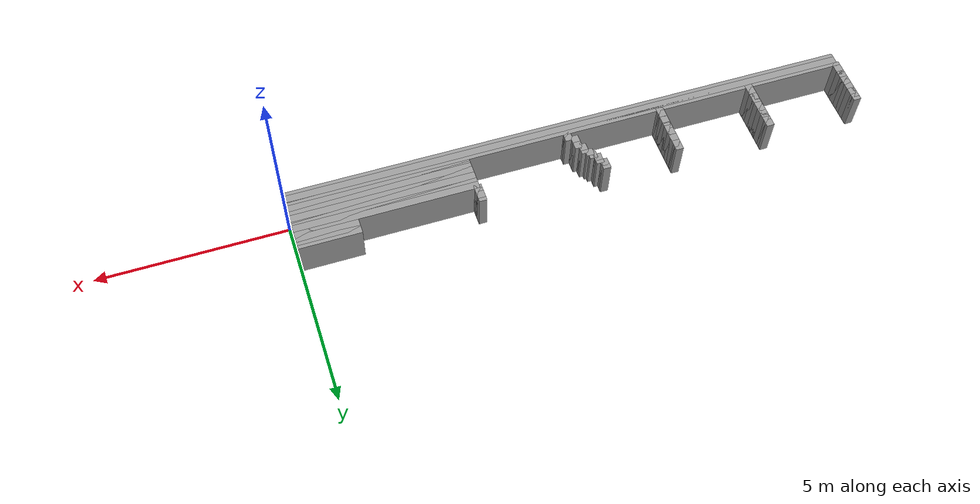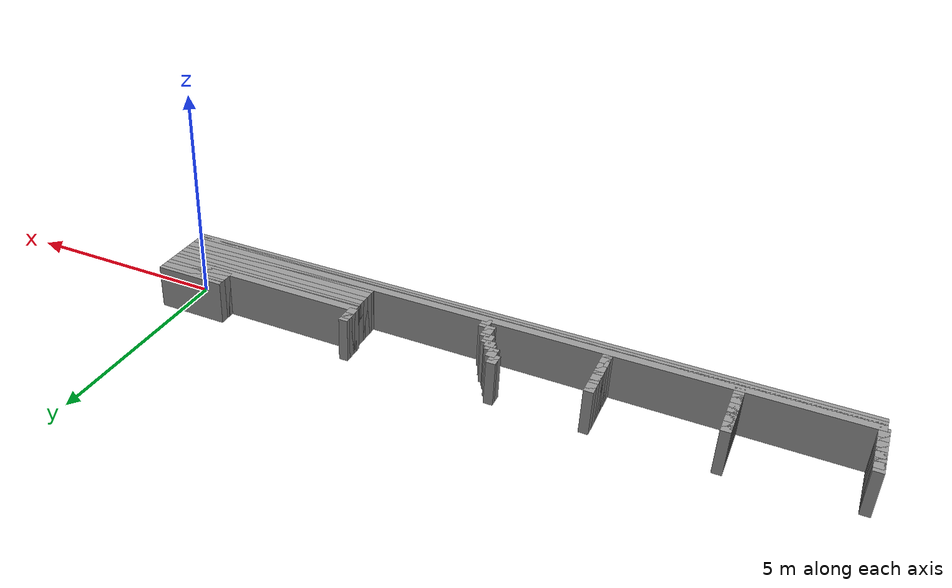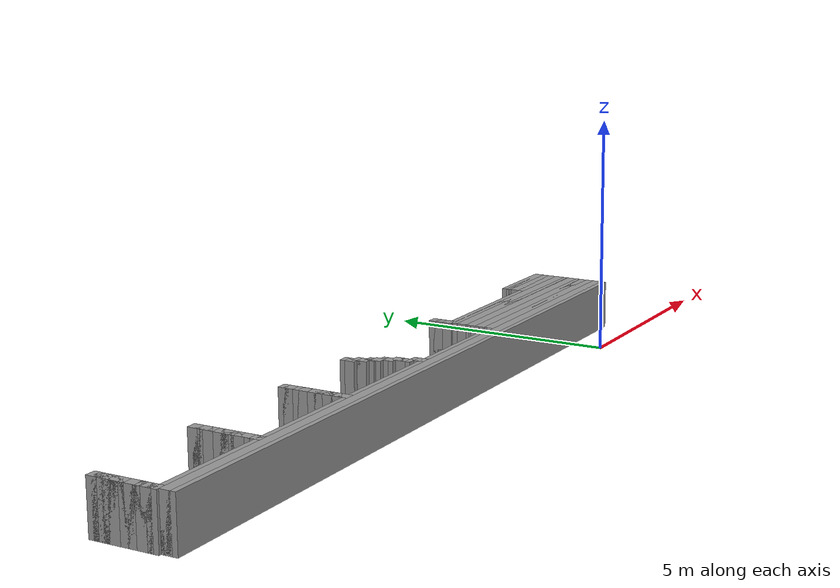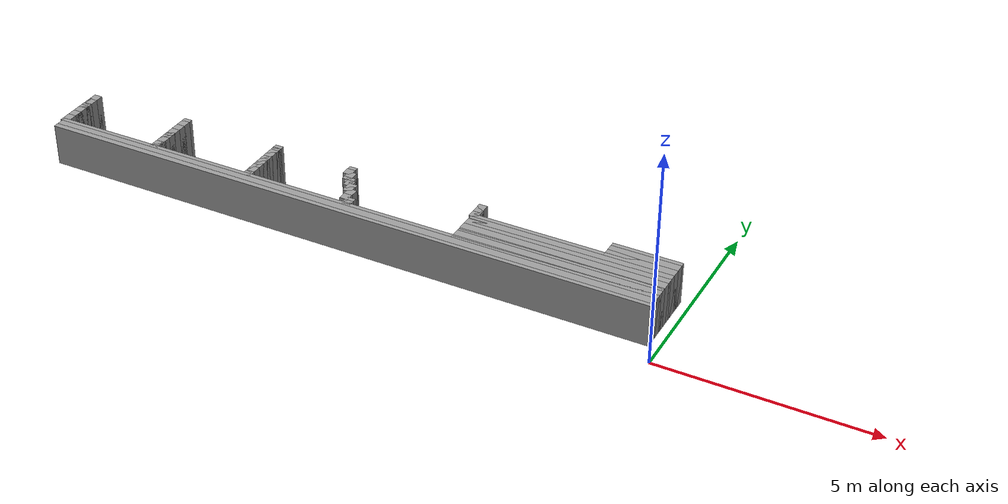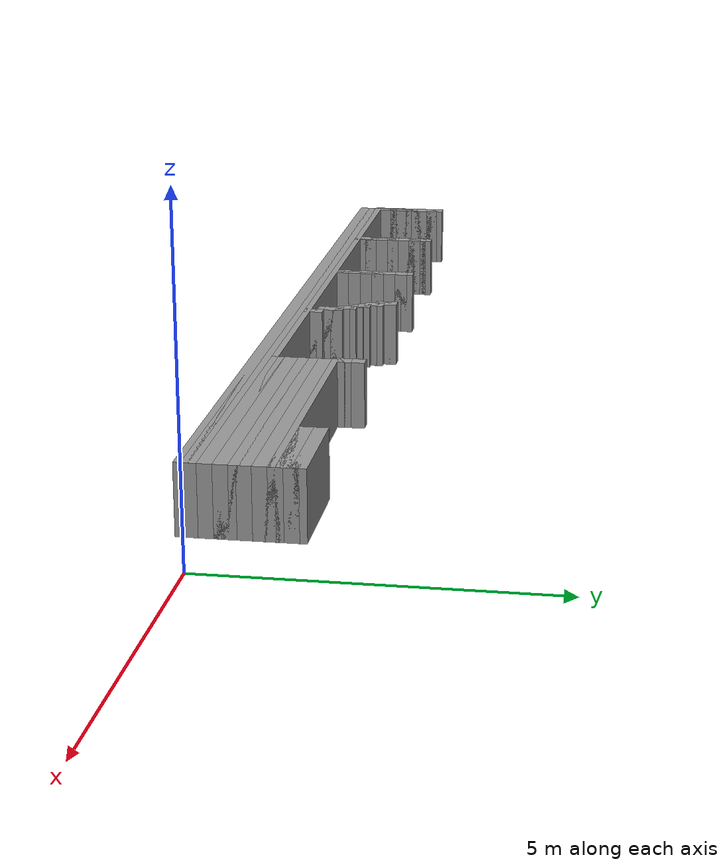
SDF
<sdf version="1.6">
 <world name="GridMap">
  <model name="GridMap">
   <link name="Wall_(74.5,0.0)">
    <collision name="Wall_(74.5,0.0)_Collision">
     <geometry><box><size>14.9 0.2 1.0</size></box></geometry>
     <pose>-7.45 0.0 0.5 0 -0 0</pose>
    </collision>
    <visual name="Wall_(74.5,0.0)_Visual">
     <geometry><box><size>14.9 0.2 1.0</size></box></geometry>
     <pose>-7.45 0.0 0.5 0 -0 0</pose>
     <material>
      <script><uri>file://media/materials/scripts/gazebo.material</uri><name>Gazebo/Grey</name></script>
      <ambient>1 1 1 1</ambient>
     </material>
     <meta><layer>0</layer></meta>
    </visual>
    <pose>0 0 0.5 0 -0 0</pose>
   </link>
   <link name="Wall_(74.5,1.0)">
    <collision name="Wall_(74.5,1.0)_Collision">
     <geometry><box><size>14.9 0.2 1.0</size></box></geometry>
     <pose>-7.45 0.1 0.5 0 -0 0</pose>
    </collision>
    <visual name="Wall_(74.5,1.0)_Visual">
     <geometry><box><size>14.9 0.2 1.0</size></box></geometry>
     <pose>-7.45 0.1 0.5 0 -0 0</pose>
     <material>
      <script><uri>file://media/materials/scripts/gazebo.material</uri><name>Gazebo/Grey</name></script>
      <ambient>1 1 1 1</ambient>
     </material>
     <meta><layer>0</layer></meta>
    </visual>
    <pose>0 0 0.5 0 -0 0</pose>
   </link>
   <link name="Wall_(74.5,2.0)">
    <collision name="Wall_(74.5,2.0)_Collision">
     <geometry><box><size>14.9 0.2 1.0</size></box></geometry>
     <pose>-7.45 0.2 0.5 0 -0 0</pose>
    </collision>
    <visual name="Wall_(74.5,2.0)_Visual">
     <geometry><box><size>14.9 0.2 1.0</size></box></geometry>
     <pose>-7.45 0.2 0.5 0 -0 0</pose>
     <material>
      <script><uri>file://media/materials/scripts/gazebo.material</uri><name>Gazebo/Grey</name></script>
      <ambient>1 1 1 1</ambient>
     </material>
     <meta><layer>0</layer></meta>
    </visual>
    <pose>0 0 0.5 0 -0 0</pose>
   </link>
   <link name="Wall_(23.5,3.0)">
    <collision name="Wall_(23.5,3.0)_Collision">
     <geometry><box><size>4.7 0.2 1.0</size></box></geometry>
     <pose>-2.35 0.30000000000000004 0.5 0 -0 0</pose>
    </collision>
    <visual name="Wall_(23.5,3.0)_Visual">
     <geometry><box><size>4.7 0.2 1.0</size></box></geometry>
     <pose>-2.35 0.30000000000000004 0.5 0 -0 0</pose>
     <material>
      <script><uri>file://media/materials/scripts/gazebo.material</uri><name>Gazebo/Grey</name></script>
      <ambient>1 1 1 1</ambient>
     </material>
     <meta><layer>0</layer></meta>
    </visual>
    <pose>0 0 0.5 0 -0 0</pose>
   </link>
   <link name="Wall_(73.0,3.0)">
    <collision name="Wall_(73.0,3.0)_Collision">
     <geometry><box><size>0.2 0.2 1.0</size></box></geometry>
     <pose>-7.300000000000001 0.30000000000000004 0.5 0 -0 0</pose>
    </collision>
    <visual name="Wall_(73.0,3.0)_Visual">
     <geometry><box><size>0.2 0.2 1.0</size></box></geometry>
     <pose>-7.300000000000001 0.30000000000000004 0.5 0 -0 0</pose>
     <material>
      <script><uri>file://media/materials/scripts/gazebo.material</uri><name>Gazebo/Grey</name></script>
      <ambient>1 1 1 1</ambient>
     </material>
     <meta><layer>0</layer></meta>
    </visual>
    <pose>0 0 0.5 0 -0 0</pose>
   </link>
   <link name="Wall_(98.5,3.0)">
    <collision name="Wall_(98.5,3.0)_Collision">
     <geometry><box><size>0.2 0.2 1.0</size></box></geometry>
     <pose>-9.850000000000001 0.30000000000000004 0.5 0 -0 0</pose>
    </collision>
    <visual name="Wall_(98.5,3.0)_Visual">
     <geometry><box><size>0.2 0.2 1.0</size></box></geometry>
     <pose>-9.850000000000001 0.30000000000000004 0.5 0 -0 0</pose>
     <material>
      <script><uri>file://media/materials/scripts/gazebo.material</uri><name>Gazebo/Grey</name></script>
      <ambient>1 1 1 1</ambient>
     </material>
     <meta><layer>0</layer></meta>
    </visual>
    <pose>0 0 0.5 0 -0 0</pose>
   </link>
   <link name="Wall_(123.5,3.0)">
    <collision name="Wall_(123.5,3.0)_Collision">
     <geometry><box><size>0.2 0.2 1.0</size></box></geometry>
     <pose>-12.350000000000001 0.30000000000000004 0.5 0 -0 0</pose>
    </collision>
    <visual name="Wall_(123.5,3.0)_Visual">
     <geometry><box><size>0.2 0.2 1.0</size></box></geometry>
     <pose>-12.350000000000001 0.30000000000000004 0.5 0 -0 0</pose>
     <material>
      <script><uri>file://media/materials/scripts/gazebo.material</uri><name>Gazebo/Grey</name></script>
      <ambient>1 1 1 1</ambient>
     </material>
     <meta><layer>0</layer></meta>
    </visual>
    <pose>0 0 0.5 0 -0 0</pose>
   </link>
   <link name="Wall_(148.5,3.0)">
    <collision name="Wall_(148.5,3.0)_Collision">
     <geometry><box><size>0.2 0.2 1.0</size></box></geometry>
     <pose>-14.850000000000001 0.30000000000000004 0.5 0 -0 0</pose>
    </collision>
    <visual name="Wall_(148.5,3.0)_Visual">
     <geometry><box><size>0.2 0.2 1.0</size></box></geometry>
     <pose>-14.850000000000001 0.30000000000000004 0.5 0 -0 0</pose>
     <material>
      <script><uri>file://media/materials/scripts/gazebo.material</uri><name>Gazebo/Grey</name></script>
      <ambient>1 1 1 1</ambient>
     </material>
     <meta><layer>0</layer></meta>
    </visual>
    <pose>0 0 0.5 0 -0 0</pose>
   </link>
   <link name="Wall_(23.5,4.0)">
    <collision name="Wall_(23.5,4.0)_Collision">
     <geometry><box><size>4.7 0.2 1.0</size></box></geometry>
     <pose>-2.35 0.4 0.5 0 -0 0</pose>
    </collision>
    <visual name="Wall_(23.5,4.0)_Visual">
     <geometry><box><size>4.7 0.2 1.0</size></box></geometry>
     <pose>-2.35 0.4 0.5 0 -0 0</pose>
     <material>
      <script><uri>file://media/materials/scripts/gazebo.material</uri><name>Gazebo/Grey</name></script>
      <ambient>1 1 1 1</ambient>
     </material>
     <meta><layer>0</layer></meta>
    </visual>
    <pose>0 0 0.5 0 -0 0</pose>
   </link>
   <link name="Wall_(73.0,4.0)">
    <collision name="Wall_(73.0,4.0)_Collision">
     <geometry><box><size>0.2 0.2 1.0</size></box></geometry>
     <pose>-7.300000000000001 0.4 0.5 0 -0 0</pose>
    </collision>
    <visual name="Wall_(73.0,4.0)_Visual">
     <geometry><box><size>0.2 0.2 1.0</size></box></geometry>
     <pose>-7.300000000000001 0.4 0.5 0 -0 0</pose>
     <material>
      <script><uri>file://media/materials/scripts/gazebo.material</uri><name>Gazebo/Grey</name></script>
      <ambient>1 1 1 1</ambient>
     </material>
     <meta><layer>0</layer></meta>
    </visual>
    <pose>0 0 0.5 0 -0 0</pose>
   </link>
   <link name="Wall_(98.5,4.0)">
    <collision name="Wall_(98.5,4.0)_Collision">
     <geometry><box><size>0.2 0.2 1.0</size></box></geometry>
     <pose>-9.850000000000001 0.4 0.5 0 -0 0</pose>
    </collision>
    <visual name="Wall_(98.5,4.0)_Visual">
     <geometry><box><size>0.2 0.2 1.0</size></box></geometry>
     <pose>-9.850000000000001 0.4 0.5 0 -0 0</pose>
     <material>
      <script><uri>file://media/materials/scripts/gazebo.material</uri><name>Gazebo/Grey</name></script>
      <ambient>1 1 1 1</ambient>
     </material>
     <meta><layer>0</layer></meta>
    </visual>
    <pose>0 0 0.5 0 -0 0</pose>
   </link>
   <link name="Wall_(123.5,4.0)">
    <collision name="Wall_(123.5,4.0)_Collision">
     <geometry><box><size>0.2 0.2 1.0</size></box></geometry>
     <pose>-12.350000000000001 0.4 0.5 0 -0 0</pose>
    </collision>
    <visual name="Wall_(123.5,4.0)_Visual">
     <geometry><box><size>0.2 0.2 1.0</size></box></geometry>
     <pose>-12.350000000000001 0.4 0.5 0 -0 0</pose>
     <material>
      <script><uri>file://media/materials/scripts/gazebo.material</uri><name>Gazebo/Grey</name></script>
      <ambient>1 1 1 1</ambient>
     </material>
     <meta><layer>0</layer></meta>
    </visual>
    <pose>0 0 0.5 0 -0 0</pose>
   </link>
   <link name="Wall_(148.5,4.0)">
    <collision name="Wall_(148.5,4.0)_Collision">
     <geometry><box><size>0.2 0.2 1.0</size></box></geometry>
     <pose>-14.850000000000001 0.4 0.5 0 -0 0</pose>
    </collision>
    <visual name="Wall_(148.5,4.0)_Visual">
     <geometry><box><size>0.2 0.2 1.0</size></box></geometry>
     <pose>-14.850000000000001 0.4 0.5 0 -0 0</pose>
     <material>
      <script><uri>file://media/materials/scripts/gazebo.material</uri><name>Gazebo/Grey</name></script>
      <ambient>1 1 1 1</ambient>
     </material>
     <meta><layer>0</layer></meta>
    </visual>
    <pose>0 0 0.5 0 -0 0</pose>
   </link>
   <link name="Wall_(23.5,5.0)">
    <collision name="Wall_(23.5,5.0)_Collision">
     <geometry><box><size>4.7 0.2 1.0</size></box></geometry>
     <pose>-2.35 0.5 0.5 0 -0 0</pose>
    </collision>
    <visual name="Wall_(23.5,5.0)_Visual">
     <geometry><box><size>4.7 0.2 1.0</size></box></geometry>
     <pose>-2.35 0.5 0.5 0 -0 0</pose>
     <material>
      <script><uri>file://media/materials/scripts/gazebo.material</uri><name>Gazebo/Grey</name></script>
      <ambient>1 1 1 1</ambient>
     </material>
     <meta><layer>0</layer></meta>
    </visual>
    <pose>0 0 0.5 0 -0 0</pose>
   </link>
   <link name="Wall_(74.5,5.0)">
    <collision name="Wall_(74.5,5.0)_Collision">
     <geometry><box><size>0.2 0.2 1.0</size></box></geometry>
     <pose>-7.45 0.5 0.5 0 -0 0</pose>
    </collision>
    <visual name="Wall_(74.5,5.0)_Visual">
     <geometry><box><size>0.2 0.2 1.0</size></box></geometry>
     <pose>-7.45 0.5 0.5 0 -0 0</pose>
     <material>
      <script><uri>file://media/materials/scripts/gazebo.material</uri><name>Gazebo/Grey</name></script>
      <ambient>1 1 1 1</ambient>
     </material>
     <meta><layer>0</layer></meta>
    </visual>
    <pose>0 0 0.5 0 -0 0</pose>
   </link>
   <link name="Wall_(98.5,5.0)">
    <collision name="Wall_(98.5,5.0)_Collision">
     <geometry><box><size>0.2 0.2 1.0</size></box></geometry>
     <pose>-9.850000000000001 0.5 0.5 0 -0 0</pose>
    </collision>
    <visual name="Wall_(98.5,5.0)_Visual">
     <geometry><box><size>0.2 0.2 1.0</size></box></geometry>
     <pose>-9.850000000000001 0.5 0.5 0 -0 0</pose>
     <material>
      <script><uri>file://media/materials/scripts/gazebo.material</uri><name>Gazebo/Grey</name></script>
      <ambient>1 1 1 1</ambient>
     </material>
     <meta><layer>0</layer></meta>
    </visual>
    <pose>0 0 0.5 0 -0 0</pose>
   </link>
   <link name="Wall_(123.5,5.0)">
    <collision name="Wall_(123.5,5.0)_Collision">
     <geometry><box><size>0.2 0.2 1.0</size></box></geometry>
     <pose>-12.350000000000001 0.5 0.5 0 -0 0</pose>
    </collision>
    <visual name="Wall_(123.5,5.0)_Visual">
     <geometry><box><size>0.2 0.2 1.0</size></box></geometry>
     <pose>-12.350000000000001 0.5 0.5 0 -0 0</pose>
     <material>
      <script><uri>file://media/materials/scripts/gazebo.material</uri><name>Gazebo/Grey</name></script>
      <ambient>1 1 1 1</ambient>
     </material>
     <meta><layer>0</layer></meta>
    </visual>
    <pose>0 0 0.5 0 -0 0</pose>
   </link>
   <link name="Wall_(148.5,5.0)">
    <collision name="Wall_(148.5,5.0)_Collision">
     <geometry><box><size>0.2 0.2 1.0</size></box></geometry>
     <pose>-14.850000000000001 0.5 0.5 0 -0 0</pose>
    </collision>
    <visual name="Wall_(148.5,5.0)_Visual">
     <geometry><box><size>0.2 0.2 1.0</size></box></geometry>
     <pose>-14.850000000000001 0.5 0.5 0 -0 0</pose>
     <material>
      <script><uri>file://media/materials/scripts/gazebo.material</uri><name>Gazebo/Grey</name></script>
      <ambient>1 1 1 1</ambient>
     </material>
     <meta><layer>0</layer></meta>
    </visual>
    <pose>0 0 0.5 0 -0 0</pose>
   </link>
   <link name="Wall_(23.5,6.0)">
    <collision name="Wall_(23.5,6.0)_Collision">
     <geometry><box><size>4.7 0.2 1.0</size></box></geometry>
     <pose>-2.35 0.6000000000000001 0.5 0 -0 0</pose>
    </collision>
    <visual name="Wall_(23.5,6.0)_Visual">
     <geometry><box><size>4.7 0.2 1.0</size></box></geometry>
     <pose>-2.35 0.6000000000000001 0.5 0 -0 0</pose>
     <material>
      <script><uri>file://media/materials/scripts/gazebo.material</uri><name>Gazebo/Grey</name></script>
      <ambient>1 1 1 1</ambient>
     </material>
     <meta><layer>0</layer></meta>
    </visual>
    <pose>0 0 0.5 0 -0 0</pose>
   </link>
   <link name="Wall_(74.5,6.0)">
    <collision name="Wall_(74.5,6.0)_Collision">
     <geometry><box><size>0.2 0.2 1.0</size></box></geometry>
     <pose>-7.45 0.6000000000000001 0.5 0 -0 0</pose>
    </collision>
    <visual name="Wall_(74.5,6.0)_Visual">
     <geometry><box><size>0.2 0.2 1.0</size></box></geometry>
     <pose>-7.45 0.6000000000000001 0.5 0 -0 0</pose>
     <material>
      <script><uri>file://media/materials/scripts/gazebo.material</uri><name>Gazebo/Grey</name></script>
      <ambient>1 1 1 1</ambient>
     </material>
     <meta><layer>0</layer></meta>
    </visual>
    <pose>0 0 0.5 0 -0 0</pose>
   </link>
   <link name="Wall_(98.5,6.0)">
    <collision name="Wall_(98.5,6.0)_Collision">
     <geometry><box><size>0.2 0.2 1.0</size></box></geometry>
     <pose>-9.850000000000001 0.6000000000000001 0.5 0 -0 0</pose>
    </collision>
    <visual name="Wall_(98.5,6.0)_Visual">
     <geometry><box><size>0.2 0.2 1.0</size></box></geometry>
     <pose>-9.850000000000001 0.6000000000000001 0.5 0 -0 0</pose>
     <material>
      <script><uri>file://media/materials/scripts/gazebo.material</uri><name>Gazebo/Grey</name></script>
      <ambient>1 1 1 1</ambient>
     </material>
     <meta><layer>0</layer></meta>
    </visual>
    <pose>0 0 0.5 0 -0 0</pose>
   </link>
   <link name="Wall_(123.5,6.0)">
    <collision name="Wall_(123.5,6.0)_Collision">
     <geometry><box><size>0.2 0.2 1.0</size></box></geometry>
     <pose>-12.350000000000001 0.6000000000000001 0.5 0 -0 0</pose>
    </collision>
    <visual name="Wall_(123.5,6.0)_Visual">
     <geometry><box><size>0.2 0.2 1.0</size></box></geometry>
     <pose>-12.350000000000001 0.6000000000000001 0.5 0 -0 0</pose>
     <material>
      <script><uri>file://media/materials/scripts/gazebo.material</uri><name>Gazebo/Grey</name></script>
      <ambient>1 1 1 1</ambient>
     </material>
     <meta><layer>0</layer></meta>
    </visual>
    <pose>0 0 0.5 0 -0 0</pose>
   </link>
   <link name="Wall_(148.5,6.0)">
    <collision name="Wall_(148.5,6.0)_Collision">
     <geometry><box><size>0.2 0.2 1.0</size></box></geometry>
     <pose>-14.850000000000001 0.6000000000000001 0.5 0 -0 0</pose>
    </collision>
    <visual name="Wall_(148.5,6.0)_Visual">
     <geometry><box><size>0.2 0.2 1.0</size></box></geometry>
     <pose>-14.850000000000001 0.6000000000000001 0.5 0 -0 0</pose>
     <material>
      <script><uri>file://media/materials/scripts/gazebo.material</uri><name>Gazebo/Grey</name></script>
      <ambient>1 1 1 1</ambient>
     </material>
     <meta><layer>0</layer></meta>
    </visual>
    <pose>0 0 0.5 0 -0 0</pose>
   </link>
   <link name="Wall_(23.5,7.0)">
    <collision name="Wall_(23.5,7.0)_Collision">
     <geometry><box><size>4.7 0.2 1.0</size></box></geometry>
     <pose>-2.35 0.7000000000000001 0.5 0 -0 0</pose>
    </collision>
    <visual name="Wall_(23.5,7.0)_Visual">
     <geometry><box><size>4.7 0.2 1.0</size></box></geometry>
     <pose>-2.35 0.7000000000000001 0.5 0 -0 0</pose>
     <material>
      <script><uri>file://media/materials/scripts/gazebo.material</uri><name>Gazebo/Grey</name></script>
      <ambient>1 1 1 1</ambient>
     </material>
     <meta><layer>0</layer></meta>
    </visual>
    <pose>0 0 0.5 0 -0 0</pose>
   </link>
   <link name="Wall_(74.5,7.0)">
    <collision name="Wall_(74.5,7.0)_Collision">
     <geometry><box><size>0.2 0.2 1.0</size></box></geometry>
     <pose>-7.45 0.7000000000000001 0.5 0 -0 0</pose>
    </collision>
    <visual name="Wall_(74.5,7.0)_Visual">
     <geometry><box><size>0.2 0.2 1.0</size></box></geometry>
     <pose>-7.45 0.7000000000000001 0.5 0 -0 0</pose>
     <material>
      <script><uri>file://media/materials/scripts/gazebo.material</uri><name>Gazebo/Grey</name></script>
      <ambient>1 1 1 1</ambient>
     </material>
     <meta><layer>0</layer></meta>
    </visual>
    <pose>0 0 0.5 0 -0 0</pose>
   </link>
   <link name="Wall_(98.5,7.0)">
    <collision name="Wall_(98.5,7.0)_Collision">
     <geometry><box><size>0.2 0.2 1.0</size></box></geometry>
     <pose>-9.850000000000001 0.7000000000000001 0.5 0 -0 0</pose>
    </collision>
    <visual name="Wall_(98.5,7.0)_Visual">
     <geometry><box><size>0.2 0.2 1.0</size></box></geometry>
     <pose>-9.850000000000001 0.7000000000000001 0.5 0 -0 0</pose>
     <material>
      <script><uri>file://media/materials/scripts/gazebo.material</uri><name>Gazebo/Grey</name></script>
      <ambient>1 1 1 1</ambient>
     </material>
     <meta><layer>0</layer></meta>
    </visual>
    <pose>0 0 0.5 0 -0 0</pose>
   </link>
   <link name="Wall_(123.5,7.0)">
    <collision name="Wall_(123.5,7.0)_Collision">
     <geometry><box><size>0.2 0.2 1.0</size></box></geometry>
     <pose>-12.350000000000001 0.7000000000000001 0.5 0 -0 0</pose>
    </collision>
    <visual name="Wall_(123.5,7.0)_Visual">
     <geometry><box><size>0.2 0.2 1.0</size></box></geometry>
     <pose>-12.350000000000001 0.7000000000000001 0.5 0 -0 0</pose>
     <material>
      <script><uri>file://media/materials/scripts/gazebo.material</uri><name>Gazebo/Grey</name></script>
      <ambient>1 1 1 1</ambient>
     </material>
     <meta><layer>0</layer></meta>
    </visual>
    <pose>0 0 0.5 0 -0 0</pose>
   </link>
   <link name="Wall_(148.5,7.0)">
    <collision name="Wall_(148.5,7.0)_Collision">
     <geometry><box><size>0.2 0.2 1.0</size></box></geometry>
     <pose>-14.850000000000001 0.7000000000000001 0.5 0 -0 0</pose>
    </collision>
    <visual name="Wall_(148.5,7.0)_Visual">
     <geometry><box><size>0.2 0.2 1.0</size></box></geometry>
     <pose>-14.850000000000001 0.7000000000000001 0.5 0 -0 0</pose>
     <material>
      <script><uri>file://media/materials/scripts/gazebo.material</uri><name>Gazebo/Grey</name></script>
      <ambient>1 1 1 1</ambient>
     </material>
     <meta><layer>0</layer></meta>
    </visual>
    <pose>0 0 0.5 0 -0 0</pose>
   </link>
   <link name="Wall_(23.5,8.0)">
    <collision name="Wall_(23.5,8.0)_Collision">
     <geometry><box><size>4.7 0.2 1.0</size></box></geometry>
     <pose>-2.35 0.8 0.5 0 -0 0</pose>
    </collision>
    <visual name="Wall_(23.5,8.0)_Visual">
     <geometry><box><size>4.7 0.2 1.0</size></box></geometry>
     <pose>-2.35 0.8 0.5 0 -0 0</pose>
     <material>
      <script><uri>file://media/materials/scripts/gazebo.material</uri><name>Gazebo/Grey</name></script>
      <ambient>1 1 1 1</ambient>
     </material>
     <meta><layer>0</layer></meta>
    </visual>
    <pose>0 0 0.5 0 -0 0</pose>
   </link>
   <link name="Wall_(75.5,8.0)">
    <collision name="Wall_(75.5,8.0)_Collision">
     <geometry><box><size>0.2 0.2 1.0</size></box></geometry>
     <pose>-7.550000000000001 0.8 0.5 0 -0 0</pose>
    </collision>
    <visual name="Wall_(75.5,8.0)_Visual">
     <geometry><box><size>0.2 0.2 1.0</size></box></geometry>
     <pose>-7.550000000000001 0.8 0.5 0 -0 0</pose>
     <material>
      <script><uri>file://media/materials/scripts/gazebo.material</uri><name>Gazebo/Grey</name></script>
      <ambient>1 1 1 1</ambient>
     </material>
     <meta><layer>0</layer></meta>
    </visual>
    <pose>0 0 0.5 0 -0 0</pose>
   </link>
   <link name="Wall_(98.5,8.0)">
    <collision name="Wall_(98.5,8.0)_Collision">
     <geometry><box><size>0.2 0.2 1.0</size></box></geometry>
     <pose>-9.850000000000001 0.8 0.5 0 -0 0</pose>
    </collision>
    <visual name="Wall_(98.5,8.0)_Visual">
     <geometry><box><size>0.2 0.2 1.0</size></box></geometry>
     <pose>-9.850000000000001 0.8 0.5 0 -0 0</pose>
     <material>
      <script><uri>file://media/materials/scripts/gazebo.material</uri><name>Gazebo/Grey</name></script>
      <ambient>1 1 1 1</ambient>
     </material>
     <meta><layer>0</layer></meta>
    </visual>
    <pose>0 0 0.5 0 -0 0</pose>
   </link>
   <link name="Wall_(123.5,8.0)">
    <collision name="Wall_(123.5,8.0)_Collision">
     <geometry><box><size>0.2 0.2 1.0</size></box></geometry>
     <pose>-12.350000000000001 0.8 0.5 0 -0 0</pose>
    </collision>
    <visual name="Wall_(123.5,8.0)_Visual">
     <geometry><box><size>0.2 0.2 1.0</size></box></geometry>
     <pose>-12.350000000000001 0.8 0.5 0 -0 0</pose>
     <material>
      <script><uri>file://media/materials/scripts/gazebo.material</uri><name>Gazebo/Grey</name></script>
      <ambient>1 1 1 1</ambient>
     </material>
     <meta><layer>0</layer></meta>
    </visual>
    <pose>0 0 0.5 0 -0 0</pose>
   </link>
   <link name="Wall_(148.5,8.0)">
    <collision name="Wall_(148.5,8.0)_Collision">
     <geometry><box><size>0.2 0.2 1.0</size></box></geometry>
     <pose>-14.850000000000001 0.8 0.5 0 -0 0</pose>
    </collision>
    <visual name="Wall_(148.5,8.0)_Visual">
     <geometry><box><size>0.2 0.2 1.0</size></box></geometry>
     <pose>-14.850000000000001 0.8 0.5 0 -0 0</pose>
     <material>
      <script><uri>file://media/materials/scripts/gazebo.material</uri><name>Gazebo/Grey</name></script>
      <ambient>1 1 1 1</ambient>
     </material>
     <meta><layer>0</layer></meta>
    </visual>
    <pose>0 0 0.5 0 -0 0</pose>
   </link>
   <link name="Wall_(23.5,9.0)">
    <collision name="Wall_(23.5,9.0)_Collision">
     <geometry><box><size>4.7 0.2 1.0</size></box></geometry>
     <pose>-2.35 0.9 0.5 0 -0 0</pose>
    </collision>
    <visual name="Wall_(23.5,9.0)_Visual">
     <geometry><box><size>4.7 0.2 1.0</size></box></geometry>
     <pose>-2.35 0.9 0.5 0 -0 0</pose>
     <material>
      <script><uri>file://media/materials/scripts/gazebo.material</uri><name>Gazebo/Grey</name></script>
      <ambient>1 1 1 1</ambient>
     </material>
     <meta><layer>0</layer></meta>
    </visual>
    <pose>0 0 0.5 0 -0 0</pose>
   </link>
   <link name="Wall_(75.5,9.0)">
    <collision name="Wall_(75.5,9.0)_Collision">
     <geometry><box><size>0.2 0.2 1.0</size></box></geometry>
     <pose>-7.550000000000001 0.9 0.5 0 -0 0</pose>
    </collision>
    <visual name="Wall_(75.5,9.0)_Visual">
     <geometry><box><size>0.2 0.2 1.0</size></box></geometry>
     <pose>-7.550000000000001 0.9 0.5 0 -0 0</pose>
     <material>
      <script><uri>file://media/materials/scripts/gazebo.material</uri><name>Gazebo/Grey</name></script>
      <ambient>1 1 1 1</ambient>
     </material>
     <meta><layer>0</layer></meta>
    </visual>
    <pose>0 0 0.5 0 -0 0</pose>
   </link>
   <link name="Wall_(98.5,9.0)">
    <collision name="Wall_(98.5,9.0)_Collision">
     <geometry><box><size>0.2 0.2 1.0</size></box></geometry>
     <pose>-9.850000000000001 0.9 0.5 0 -0 0</pose>
    </collision>
    <visual name="Wall_(98.5,9.0)_Visual">
     <geometry><box><size>0.2 0.2 1.0</size></box></geometry>
     <pose>-9.850000000000001 0.9 0.5 0 -0 0</pose>
     <material>
      <script><uri>file://media/materials/scripts/gazebo.material</uri><name>Gazebo/Grey</name></script>
      <ambient>1 1 1 1</ambient>
     </material>
     <meta><layer>0</layer></meta>
    </visual>
    <pose>0 0 0.5 0 -0 0</pose>
   </link>
   <link name="Wall_(123.5,9.0)">
    <collision name="Wall_(123.5,9.0)_Collision">
     <geometry><box><size>0.2 0.2 1.0</size></box></geometry>
     <pose>-12.350000000000001 0.9 0.5 0 -0 0</pose>
    </collision>
    <visual name="Wall_(123.5,9.0)_Visual">
     <geometry><box><size>0.2 0.2 1.0</size></box></geometry>
     <pose>-12.350000000000001 0.9 0.5 0 -0 0</pose>
     <material>
      <script><uri>file://media/materials/scripts/gazebo.material</uri><name>Gazebo/Grey</name></script>
      <ambient>1 1 1 1</ambient>
     </material>
     <meta><layer>0</layer></meta>
    </visual>
    <pose>0 0 0.5 0 -0 0</pose>
   </link>
   <link name="Wall_(148.5,9.0)">
    <collision name="Wall_(148.5,9.0)_Collision">
     <geometry><box><size>0.2 0.2 1.0</size></box></geometry>
     <pose>-14.850000000000001 0.9 0.5 0 -0 0</pose>
    </collision>
    <visual name="Wall_(148.5,9.0)_Visual">
     <geometry><box><size>0.2 0.2 1.0</size></box></geometry>
     <pose>-14.850000000000001 0.9 0.5 0 -0 0</pose>
     <material>
      <script><uri>file://media/materials/scripts/gazebo.material</uri><name>Gazebo/Grey</name></script>
      <ambient>1 1 1 1</ambient>
     </material>
     <meta><layer>0</layer></meta>
    </visual>
    <pose>0 0 0.5 0 -0 0</pose>
   </link>
   <link name="Wall_(23.5,10.0)">
    <collision name="Wall_(23.5,10.0)_Collision">
     <geometry><box><size>4.7 0.2 1.0</size></box></geometry>
     <pose>-2.35 1.0 0.5 0 -0 0</pose>
    </collision>
    <visual name="Wall_(23.5,10.0)_Visual">
     <geometry><box><size>4.7 0.2 1.0</size></box></geometry>
     <pose>-2.35 1.0 0.5 0 -0 0</pose>
     <material>
      <script><uri>file://media/materials/scripts/gazebo.material</uri><name>Gazebo/Grey</name></script>
      <ambient>1 1 1 1</ambient>
     </material>
     <meta><layer>0</layer></meta>
    </visual>
    <pose>0 0 0.5 0 -0 0</pose>
   </link>
   <link name="Wall_(76.5,10.0)">
    <collision name="Wall_(76.5,10.0)_Collision">
     <geometry><box><size>0.2 0.2 1.0</size></box></geometry>
     <pose>-7.65 1.0 0.5 0 -0 0</pose>
    </collision>
    <visual name="Wall_(76.5,10.0)_Visual">
     <geometry><box><size>0.2 0.2 1.0</size></box></geometry>
     <pose>-7.65 1.0 0.5 0 -0 0</pose>
     <material>
      <script><uri>file://media/materials/scripts/gazebo.material</uri><name>Gazebo/Grey</name></script>
      <ambient>1 1 1 1</ambient>
     </material>
     <meta><layer>0</layer></meta>
    </visual>
    <pose>0 0 0.5 0 -0 0</pose>
   </link>
   <link name="Wall_(98.5,10.0)">
    <collision name="Wall_(98.5,10.0)_Collision">
     <geometry><box><size>0.2 0.2 1.0</size></box></geometry>
     <pose>-9.850000000000001 1.0 0.5 0 -0 0</pose>
    </collision>
    <visual name="Wall_(98.5,10.0)_Visual">
     <geometry><box><size>0.2 0.2 1.0</size></box></geometry>
     <pose>-9.850000000000001 1.0 0.5 0 -0 0</pose>
     <material>
      <script><uri>file://media/materials/scripts/gazebo.material</uri><name>Gazebo/Grey</name></script>
      <ambient>1 1 1 1</ambient>
     </material>
     <meta><layer>0</layer></meta>
    </visual>
    <pose>0 0 0.5 0 -0 0</pose>
   </link>
   <link name="Wall_(123.5,10.0)">
    <collision name="Wall_(123.5,10.0)_Collision">
     <geometry><box><size>0.2 0.2 1.0</size></box></geometry>
     <pose>-12.350000000000001 1.0 0.5 0 -0 0</pose>
    </collision>
    <visual name="Wall_(123.5,10.0)_Visual">
     <geometry><box><size>0.2 0.2 1.0</size></box></geometry>
     <pose>-12.350000000000001 1.0 0.5 0 -0 0</pose>
     <material>
      <script><uri>file://media/materials/scripts/gazebo.material</uri><name>Gazebo/Grey</name></script>
      <ambient>1 1 1 1</ambient>
     </material>
     <meta><layer>0</layer></meta>
    </visual>
    <pose>0 0 0.5 0 -0 0</pose>
   </link>
   <link name="Wall_(148.5,10.0)">
    <collision name="Wall_(148.5,10.0)_Collision">
     <geometry><box><size>0.2 0.2 1.0</size></box></geometry>
     <pose>-14.850000000000001 1.0 0.5 0 -0 0</pose>
    </collision>
    <visual name="Wall_(148.5,10.0)_Visual">
     <geometry><box><size>0.2 0.2 1.0</size></box></geometry>
     <pose>-14.850000000000001 1.0 0.5 0 -0 0</pose>
     <material>
      <script><uri>file://media/materials/scripts/gazebo.material</uri><name>Gazebo/Grey</name></script>
      <ambient>1 1 1 1</ambient>
     </material>
     <meta><layer>0</layer></meta>
    </visual>
    <pose>0 0 0.5 0 -0 0</pose>
   </link>
   <link name="Wall_(23.5,11.0)">
    <collision name="Wall_(23.5,11.0)_Collision">
     <geometry><box><size>4.7 0.2 1.0</size></box></geometry>
     <pose>-2.35 1.1 0.5 0 -0 0</pose>
    </collision>
    <visual name="Wall_(23.5,11.0)_Visual">
     <geometry><box><size>4.7 0.2 1.0</size></box></geometry>
     <pose>-2.35 1.1 0.5 0 -0 0</pose>
     <material>
      <script><uri>file://media/materials/scripts/gazebo.material</uri><name>Gazebo/Grey</name></script>
      <ambient>1 1 1 1</ambient>
     </material>
     <meta><layer>0</layer></meta>
    </visual>
    <pose>0 0 0.5 0 -0 0</pose>
   </link>
   <link name="Wall_(77.0,11.0)">
    <collision name="Wall_(77.0,11.0)_Collision">
     <geometry><box><size>0.2 0.2 1.0</size></box></geometry>
     <pose>-7.7 1.1 0.5 0 -0 0</pose>
    </collision>
    <visual name="Wall_(77.0,11.0)_Visual">
     <geometry><box><size>0.2 0.2 1.0</size></box></geometry>
     <pose>-7.7 1.1 0.5 0 -0 0</pose>
     <material>
      <script><uri>file://media/materials/scripts/gazebo.material</uri><name>Gazebo/Grey</name></script>
      <ambient>1 1 1 1</ambient>
     </material>
     <meta><layer>0</layer></meta>
    </visual>
    <pose>0 0 0.5 0 -0 0</pose>
   </link>
   <link name="Wall_(98.5,11.0)">
    <collision name="Wall_(98.5,11.0)_Collision">
     <geometry><box><size>0.2 0.2 1.0</size></box></geometry>
     <pose>-9.850000000000001 1.1 0.5 0 -0 0</pose>
    </collision>
    <visual name="Wall_(98.5,11.0)_Visual">
     <geometry><box><size>0.2 0.2 1.0</size></box></geometry>
     <pose>-9.850000000000001 1.1 0.5 0 -0 0</pose>
     <material>
      <script><uri>file://media/materials/scripts/gazebo.material</uri><name>Gazebo/Grey</name></script>
      <ambient>1 1 1 1</ambient>
     </material>
     <meta><layer>0</layer></meta>
    </visual>
    <pose>0 0 0.5 0 -0 0</pose>
   </link>
   <link name="Wall_(123.5,11.0)">
    <collision name="Wall_(123.5,11.0)_Collision">
     <geometry><box><size>0.2 0.2 1.0</size></box></geometry>
     <pose>-12.350000000000001 1.1 0.5 0 -0 0</pose>
    </collision>
    <visual name="Wall_(123.5,11.0)_Visual">
     <geometry><box><size>0.2 0.2 1.0</size></box></geometry>
     <pose>-12.350000000000001 1.1 0.5 0 -0 0</pose>
     <material>
      <script><uri>file://media/materials/scripts/gazebo.material</uri><name>Gazebo/Grey</name></script>
      <ambient>1 1 1 1</ambient>
     </material>
     <meta><layer>0</layer></meta>
    </visual>
    <pose>0 0 0.5 0 -0 0</pose>
   </link>
   <link name="Wall_(148.5,11.0)">
    <collision name="Wall_(148.5,11.0)_Collision">
     <geometry><box><size>0.2 0.2 1.0</size></box></geometry>
     <pose>-14.850000000000001 1.1 0.5 0 -0 0</pose>
    </collision>
    <visual name="Wall_(148.5,11.0)_Visual">
     <geometry><box><size>0.2 0.2 1.0</size></box></geometry>
     <pose>-14.850000000000001 1.1 0.5 0 -0 0</pose>
     <material>
      <script><uri>file://media/materials/scripts/gazebo.material</uri><name>Gazebo/Grey</name></script>
      <ambient>1 1 1 1</ambient>
     </material>
     <meta><layer>0</layer></meta>
    </visual>
    <pose>0 0 0.5 0 -0 0</pose>
   </link>
   <link name="Wall_(8.0,12.0)">
    <collision name="Wall_(8.0,12.0)_Collision">
     <geometry><box><size>1.6 0.2 1.0</size></box></geometry>
     <pose>-0.8 1.2000000000000002 0.5 0 -0 0</pose>
    </collision>
    <visual name="Wall_(8.0,12.0)_Visual">
     <geometry><box><size>1.6 0.2 1.0</size></box></geometry>
     <pose>-0.8 1.2000000000000002 0.5 0 -0 0</pose>
     <material>
      <script><uri>file://media/materials/scripts/gazebo.material</uri><name>Gazebo/Grey</name></script>
      <ambient>1 1 1 1</ambient>
     </material>
     <meta><layer>0</layer></meta>
    </visual>
    <pose>0 0 0.5 0 -0 0</pose>
   </link>
   <link name="Wall_(46.5,12.0)">
    <collision name="Wall_(46.5,12.0)_Collision">
     <geometry><box><size>0.2 0.2 1.0</size></box></geometry>
     <pose>-4.65 1.2000000000000002 0.5 0 -0 0</pose>
    </collision>
    <visual name="Wall_(46.5,12.0)_Visual">
     <geometry><box><size>0.2 0.2 1.0</size></box></geometry>
     <pose>-4.65 1.2000000000000002 0.5 0 -0 0</pose>
     <material>
      <script><uri>file://media/materials/scripts/gazebo.material</uri><name>Gazebo/Grey</name></script>
      <ambient>1 1 1 1</ambient>
     </material>
     <meta><layer>0</layer></meta>
    </visual>
    <pose>0 0 0.5 0 -0 0</pose>
   </link>
   <link name="Wall_(78.0,12.0)">
    <collision name="Wall_(78.0,12.0)_Collision">
     <geometry><box><size>0.2 0.2 1.0</size></box></geometry>
     <pose>-7.800000000000001 1.2000000000000002 0.5 0 -0 0</pose>
    </collision>
    <visual name="Wall_(78.0,12.0)_Visual">
     <geometry><box><size>0.2 0.2 1.0</size></box></geometry>
     <pose>-7.800000000000001 1.2000000000000002 0.5 0 -0 0</pose>
     <material>
      <script><uri>file://media/materials/scripts/gazebo.material</uri><name>Gazebo/Grey</name></script>
      <ambient>1 1 1 1</ambient>
     </material>
     <meta><layer>0</layer></meta>
    </visual>
    <pose>0 0 0.5 0 -0 0</pose>
   </link>
   <link name="Wall_(98.5,12.0)">
    <collision name="Wall_(98.5,12.0)_Collision">
     <geometry><box><size>0.2 0.2 1.0</size></box></geometry>
     <pose>-9.850000000000001 1.2000000000000002 0.5 0 -0 0</pose>
    </collision>
    <visual name="Wall_(98.5,12.0)_Visual">
     <geometry><box><size>0.2 0.2 1.0</size></box></geometry>
     <pose>-9.850000000000001 1.2000000000000002 0.5 0 -0 0</pose>
     <material>
      <script><uri>file://media/materials/scripts/gazebo.material</uri><name>Gazebo/Grey</name></script>
      <ambient>1 1 1 1</ambient>
     </material>
     <meta><layer>0</layer></meta>
    </visual>
    <pose>0 0 0.5 0 -0 0</pose>
   </link>
   <link name="Wall_(123.5,12.0)">
    <collision name="Wall_(123.5,12.0)_Collision">
     <geometry><box><size>0.2 0.2 1.0</size></box></geometry>
     <pose>-12.350000000000001 1.2000000000000002 0.5 0 -0 0</pose>
    </collision>
    <visual name="Wall_(123.5,12.0)_Visual">
     <geometry><box><size>0.2 0.2 1.0</size></box></geometry>
     <pose>-12.350000000000001 1.2000000000000002 0.5 0 -0 0</pose>
     <material>
      <script><uri>file://media/materials/scripts/gazebo.material</uri><name>Gazebo/Grey</name></script>
      <ambient>1 1 1 1</ambient>
     </material>
     <meta><layer>0</layer></meta>
    </visual>
    <pose>0 0 0.5 0 -0 0</pose>
   </link>
   <link name="Wall_(148.5,12.0)">
    <collision name="Wall_(148.5,12.0)_Collision">
     <geometry><box><size>0.2 0.2 1.0</size></box></geometry>
     <pose>-14.850000000000001 1.2000000000000002 0.5 0 -0 0</pose>
    </collision>
    <visual name="Wall_(148.5,12.0)_Visual">
     <geometry><box><size>0.2 0.2 1.0</size></box></geometry>
     <pose>-14.850000000000001 1.2000000000000002 0.5 0 -0 0</pose>
     <material>
      <script><uri>file://media/materials/scripts/gazebo.material</uri><name>Gazebo/Grey</name></script>
      <ambient>1 1 1 1</ambient>
     </material>
     <meta><layer>0</layer></meta>
    </visual>
    <pose>0 0 0.5 0 -0 0</pose>
   </link>
   <link name="Wall_(8.0,13.0)">
    <collision name="Wall_(8.0,13.0)_Collision">
     <geometry><box><size>1.6 0.2 1.0</size></box></geometry>
     <pose>-0.8 1.3 0.5 0 -0 0</pose>
    </collision>
    <visual name="Wall_(8.0,13.0)_Visual">
     <geometry><box><size>1.6 0.2 1.0</size></box></geometry>
     <pose>-0.8 1.3 0.5 0 -0 0</pose>
     <material>
      <script><uri>file://media/materials/scripts/gazebo.material</uri><name>Gazebo/Grey</name></script>
      <ambient>1 1 1 1</ambient>
     </material>
     <meta><layer>0</layer></meta>
    </visual>
    <pose>0 0 0.5 0 -0 0</pose>
   </link>
   <link name="Wall_(46.5,13.0)">
    <collision name="Wall_(46.5,13.0)_Collision">
     <geometry><box><size>0.2 0.2 1.0</size></box></geometry>
     <pose>-4.65 1.3 0.5 0 -0 0</pose>
    </collision>
    <visual name="Wall_(46.5,13.0)_Visual">
     <geometry><box><size>0.2 0.2 1.0</size></box></geometry>
     <pose>-4.65 1.3 0.5 0 -0 0</pose>
     <material>
      <script><uri>file://media/materials/scripts/gazebo.material</uri><name>Gazebo/Grey</name></script>
      <ambient>1 1 1 1</ambient>
     </material>
     <meta><layer>0</layer></meta>
    </visual>
    <pose>0 0 0.5 0 -0 0</pose>
   </link>
   <link name="Wall_(78.0,13.0)">
    <collision name="Wall_(78.0,13.0)_Collision">
     <geometry><box><size>0.2 0.2 1.0</size></box></geometry>
     <pose>-7.800000000000001 1.3 0.5 0 -0 0</pose>
    </collision>
    <visual name="Wall_(78.0,13.0)_Visual">
     <geometry><box><size>0.2 0.2 1.0</size></box></geometry>
     <pose>-7.800000000000001 1.3 0.5 0 -0 0</pose>
     <material>
      <script><uri>file://media/materials/scripts/gazebo.material</uri><name>Gazebo/Grey</name></script>
      <ambient>1 1 1 1</ambient>
     </material>
     <meta><layer>0</layer></meta>
    </visual>
    <pose>0 0 0.5 0 -0 0</pose>
   </link>
   <link name="Wall_(98.5,13.0)">
    <collision name="Wall_(98.5,13.0)_Collision">
     <geometry><box><size>0.2 0.2 1.0</size></box></geometry>
     <pose>-9.850000000000001 1.3 0.5 0 -0 0</pose>
    </collision>
    <visual name="Wall_(98.5,13.0)_Visual">
     <geometry><box><size>0.2 0.2 1.0</size></box></geometry>
     <pose>-9.850000000000001 1.3 0.5 0 -0 0</pose>
     <material>
      <script><uri>file://media/materials/scripts/gazebo.material</uri><name>Gazebo/Grey</name></script>
      <ambient>1 1 1 1</ambient>
     </material>
     <meta><layer>0</layer></meta>
    </visual>
    <pose>0 0 0.5 0 -0 0</pose>
   </link>
   <link name="Wall_(123.5,13.0)">
    <collision name="Wall_(123.5,13.0)_Collision">
     <geometry><box><size>0.2 0.2 1.0</size></box></geometry>
     <pose>-12.350000000000001 1.3 0.5 0 -0 0</pose>
    </collision>
    <visual name="Wall_(123.5,13.0)_Visual">
     <geometry><box><size>0.2 0.2 1.0</size></box></geometry>
     <pose>-12.350000000000001 1.3 0.5 0 -0 0</pose>
     <material>
      <script><uri>file://media/materials/scripts/gazebo.material</uri><name>Gazebo/Grey</name></script>
      <ambient>1 1 1 1</ambient>
     </material>
     <meta><layer>0</layer></meta>
    </visual>
    <pose>0 0 0.5 0 -0 0</pose>
   </link>
   <link name="Wall_(148.5,13.0)">
    <collision name="Wall_(148.5,13.0)_Collision">
     <geometry><box><size>0.2 0.2 1.0</size></box></geometry>
     <pose>-14.850000000000001 1.3 0.5 0 -0 0</pose>
    </collision>
    <visual name="Wall_(148.5,13.0)_Visual">
     <geometry><box><size>0.2 0.2 1.0</size></box></geometry>
     <pose>-14.850000000000001 1.3 0.5 0 -0 0</pose>
     <material>
      <script><uri>file://media/materials/scripts/gazebo.material</uri><name>Gazebo/Grey</name></script>
      <ambient>1 1 1 1</ambient>
     </material>
     <meta><layer>0</layer></meta>
    </visual>
    <pose>0 0 0.5 0 -0 0</pose>
   </link>
   <link name="Wall_(8.0,14.0)">
    <collision name="Wall_(8.0,14.0)_Collision">
     <geometry><box><size>1.6 0.2 1.0</size></box></geometry>
     <pose>-0.8 1.4000000000000001 0.5 0 -0 0</pose>
    </collision>
    <visual name="Wall_(8.0,14.0)_Visual">
     <geometry><box><size>1.6 0.2 1.0</size></box></geometry>
     <pose>-0.8 1.4000000000000001 0.5 0 -0 0</pose>
     <material>
      <script><uri>file://media/materials/scripts/gazebo.material</uri><name>Gazebo/Grey</name></script>
      <ambient>1 1 1 1</ambient>
     </material>
     <meta><layer>0</layer></meta>
    </visual>
    <pose>0 0 0.5 0 -0 0</pose>
   </link>
   <link name="Wall_(46.5,14.0)">
    <collision name="Wall_(46.5,14.0)_Collision">
     <geometry><box><size>0.2 0.2 1.0</size></box></geometry>
     <pose>-4.65 1.4000000000000001 0.5 0 -0 0</pose>
    </collision>
    <visual name="Wall_(46.5,14.0)_Visual">
     <geometry><box><size>0.2 0.2 1.0</size></box></geometry>
     <pose>-4.65 1.4000000000000001 0.5 0 -0 0</pose>
     <material>
      <script><uri>file://media/materials/scripts/gazebo.material</uri><name>Gazebo/Grey</name></script>
      <ambient>1 1 1 1</ambient>
     </material>
     <meta><layer>0</layer></meta>
    </visual>
    <pose>0 0 0.5 0 -0 0</pose>
   </link>
   <link name="Wall_(79.0,14.0)">
    <collision name="Wall_(79.0,14.0)_Collision">
     <geometry><box><size>0.2 0.2 1.0</size></box></geometry>
     <pose>-7.9 1.4000000000000001 0.5 0 -0 0</pose>
    </collision>
    <visual name="Wall_(79.0,14.0)_Visual">
     <geometry><box><size>0.2 0.2 1.0</size></box></geometry>
     <pose>-7.9 1.4000000000000001 0.5 0 -0 0</pose>
     <material>
      <script><uri>file://media/materials/scripts/gazebo.material</uri><name>Gazebo/Grey</name></script>
      <ambient>1 1 1 1</ambient>
     </material>
     <meta><layer>0</layer></meta>
    </visual>
    <pose>0 0 0.5 0 -0 0</pose>
   </link>
   <link name="Wall_(98.5,14.0)">
    <collision name="Wall_(98.5,14.0)_Collision">
     <geometry><box><size>0.2 0.2 1.0</size></box></geometry>
     <pose>-9.850000000000001 1.4000000000000001 0.5 0 -0 0</pose>
    </collision>
    <visual name="Wall_(98.5,14.0)_Visual">
     <geometry><box><size>0.2 0.2 1.0</size></box></geometry>
     <pose>-9.850000000000001 1.4000000000000001 0.5 0 -0 0</pose>
     <material>
      <script><uri>file://media/materials/scripts/gazebo.material</uri><name>Gazebo/Grey</name></script>
      <ambient>1 1 1 1</ambient>
     </material>
     <meta><layer>0</layer></meta>
    </visual>
    <pose>0 0 0.5 0 -0 0</pose>
   </link>
   <link name="Wall_(123.5,14.0)">
    <collision name="Wall_(123.5,14.0)_Collision">
     <geometry><box><size>0.2 0.2 1.0</size></box></geometry>
     <pose>-12.350000000000001 1.4000000000000001 0.5 0 -0 0</pose>
    </collision>
    <visual name="Wall_(123.5,14.0)_Visual">
     <geometry><box><size>0.2 0.2 1.0</size></box></geometry>
     <pose>-12.350000000000001 1.4000000000000001 0.5 0 -0 0</pose>
     <material>
      <script><uri>file://media/materials/scripts/gazebo.material</uri><name>Gazebo/Grey</name></script>
      <ambient>1 1 1 1</ambient>
     </material>
     <meta><layer>0</layer></meta>
    </visual>
    <pose>0 0 0.5 0 -0 0</pose>
   </link>
   <link name="Wall_(148.5,14.0)">
    <collision name="Wall_(148.5,14.0)_Collision">
     <geometry><box><size>0.2 0.2 1.0</size></box></geometry>
     <pose>-14.850000000000001 1.4000000000000001 0.5 0 -0 0</pose>
    </collision>
    <visual name="Wall_(148.5,14.0)_Visual">
     <geometry><box><size>0.2 0.2 1.0</size></box></geometry>
     <pose>-14.850000000000001 1.4000000000000001 0.5 0 -0 0</pose>
     <material>
      <script><uri>file://media/materials/scripts/gazebo.material</uri><name>Gazebo/Grey</name></script>
      <ambient>1 1 1 1</ambient>
     </material>
     <meta><layer>0</layer></meta>
    </visual>
    <pose>0 0 0.5 0 -0 0</pose>
   </link>
   <link name="Wall_(8.0,15.0)">
    <collision name="Wall_(8.0,15.0)_Collision">
     <geometry><box><size>1.6 0.2 1.0</size></box></geometry>
     <pose>-0.8 1.5 0.5 0 -0 0</pose>
    </collision>
    <visual name="Wall_(8.0,15.0)_Visual">
     <geometry><box><size>1.6 0.2 1.0</size></box></geometry>
     <pose>-0.8 1.5 0.5 0 -0 0</pose>
     <material>
      <script><uri>file://media/materials/scripts/gazebo.material</uri><name>Gazebo/Grey</name></script>
      <ambient>1 1 1 1</ambient>
     </material>
     <meta><layer>0</layer></meta>
    </visual>
    <pose>0 0 0.5 0 -0 0</pose>
   </link>
   <link name="Wall_(46.5,15.0)">
    <collision name="Wall_(46.5,15.0)_Collision">
     <geometry><box><size>0.2 0.2 1.0</size></box></geometry>
     <pose>-4.65 1.5 0.5 0 -0 0</pose>
    </collision>
    <visual name="Wall_(46.5,15.0)_Visual">
     <geometry><box><size>0.2 0.2 1.0</size></box></geometry>
     <pose>-4.65 1.5 0.5 0 -0 0</pose>
     <material>
      <script><uri>file://media/materials/scripts/gazebo.material</uri><name>Gazebo/Grey</name></script>
      <ambient>1 1 1 1</ambient>
     </material>
     <meta><layer>0</layer></meta>
    </visual>
    <pose>0 0 0.5 0 -0 0</pose>
   </link>
   <link name="Wall_(79.0,15.0)">
    <collision name="Wall_(79.0,15.0)_Collision">
     <geometry><box><size>0.2 0.2 1.0</size></box></geometry>
     <pose>-7.9 1.5 0.5 0 -0 0</pose>
    </collision>
    <visual name="Wall_(79.0,15.0)_Visual">
     <geometry><box><size>0.2 0.2 1.0</size></box></geometry>
     <pose>-7.9 1.5 0.5 0 -0 0</pose>
     <material>
      <script><uri>file://media/materials/scripts/gazebo.material</uri><name>Gazebo/Grey</name></script>
      <ambient>1 1 1 1</ambient>
     </material>
     <meta><layer>0</layer></meta>
    </visual>
    <pose>0 0 0.5 0 -0 0</pose>
   </link>
   <link name="Wall_(98.5,15.0)">
    <collision name="Wall_(98.5,15.0)_Collision">
     <geometry><box><size>0.2 0.2 1.0</size></box></geometry>
     <pose>-9.850000000000001 1.5 0.5 0 -0 0</pose>
    </collision>
    <visual name="Wall_(98.5,15.0)_Visual">
     <geometry><box><size>0.2 0.2 1.0</size></box></geometry>
     <pose>-9.850000000000001 1.5 0.5 0 -0 0</pose>
     <material>
      <script><uri>file://media/materials/scripts/gazebo.material</uri><name>Gazebo/Grey</name></script>
      <ambient>1 1 1 1</ambient>
     </material>
     <meta><layer>0</layer></meta>
    </visual>
    <pose>0 0 0.5 0 -0 0</pose>
   </link>
   <link name="Wall_(123.5,15.0)">
    <collision name="Wall_(123.5,15.0)_Collision">
     <geometry><box><size>0.2 0.2 1.0</size></box></geometry>
     <pose>-12.350000000000001 1.5 0.5 0 -0 0</pose>
    </collision>
    <visual name="Wall_(123.5,15.0)_Visual">
     <geometry><box><size>0.2 0.2 1.0</size></box></geometry>
     <pose>-12.350000000000001 1.5 0.5 0 -0 0</pose>
     <material>
      <script><uri>file://media/materials/scripts/gazebo.material</uri><name>Gazebo/Grey</name></script>
      <ambient>1 1 1 1</ambient>
     </material>
     <meta><layer>0</layer></meta>
    </visual>
    <pose>0 0 0.5 0 -0 0</pose>
   </link>
   <static>1</static>
  </model>
 </world>
</sdf>
